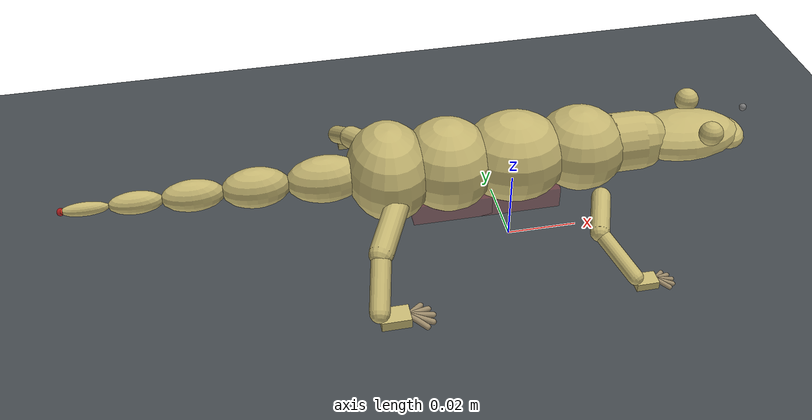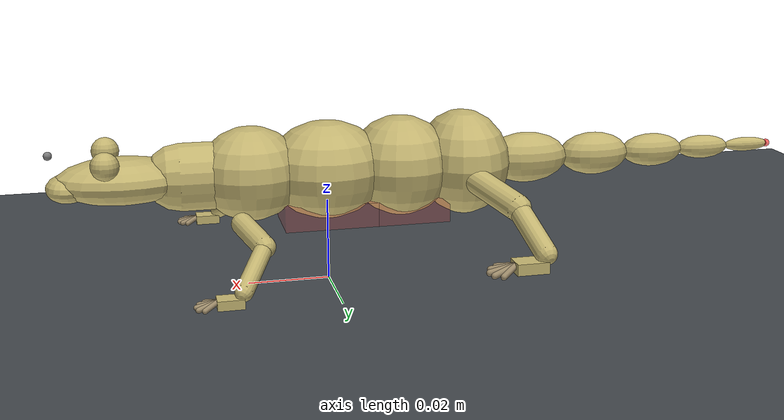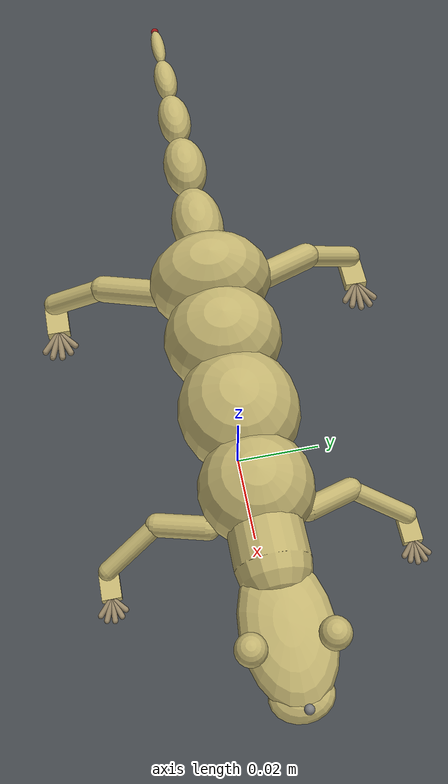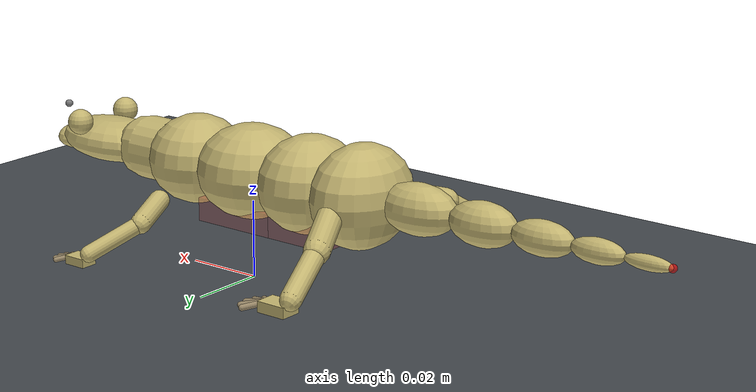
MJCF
<?xml version="1.0" encoding="utf-8"?>
<mujoco model="gecko_body_lab_candidate_v2">
  <compiler angle="degree" autolimits="true" inertiafromgeom="true" eulerseq="xyz" />
  <option timestep="0.0008" iterations="100" ls_iterations="50" integrator="implicitfast" cone="elliptic" jacobian="dense">
    <flag eulerdamp="disable" />
  </option>
  <statistic center="0 0 0.02" extent="0.28" meansize="0.01" />
  <visual>
    <global offwidth="640" offheight="480" azimuth="135" elevation="-20" />
    <quality shadowsize="2048" />
    <headlight diffuse="0.7 0.7 0.7" ambient="0.35 0.35 0.35" />
    <map force="0.01" />
  </visual>
  <default>
    <!-- joints: small armature+damping stabilise the light limbs [EST] -->
    <joint type="hinge" limited="true" armature="0.0012" damping="0.005" frictionloss="0.0002" />
    <default class="collision">
      <!-- contype=2,conaffinity=1 vs floor(1,1) => body-floor contacts only -->
      <geom group="3" contype="2" conaffinity="1" condim="3" friction="0.9 0.005 0.0001" solref="0.006 1" solimp="0.95 0.99 0.001" rgba="0.4 0.5 0.55 0.35" />
    </default>
    <default class="visual">
      <geom group="1" contype="0" conaffinity="0" mass="0" rgba="0.78 0.72 0.45 1" />
    </default>
    <default class="pos_small">
      <!-- head/neck/toes authority -->
      <position kp="0.049673202614379089" kv="0.0024836601307189543" forcerange="-0.24836601307189543 0.24836601307189543" />
    </default>
  </default>
  <asset>
    <texture type="skybox" builtin="gradient" rgb1="0.55 0.62 0.72" rgb2="0.18 0.22 0.30" width="256" height="256" />
    <texture name="grid" type="2d" builtin="checker" rgb1="0.22 0.24 0.26" rgb2="0.30 0.32 0.34" width="300" height="300" mark="edge" markrgb="0.5 0.5 0.5" />
    <material name="grid" texture="grid" texrepeat="6 6" texuniform="true" reflectance="0.05" />
    <material name="skin" rgba="0.83 0.73 0.42 1" />
    <!-- gecko base -->
    <material name="spot" rgba="0.45 0.36 0.22 1" />
    <material name="belly" rgba="0.93 0.90 0.80 1" />
    <material name="eye" rgba="0.05 0.05 0.06 1" />
  </asset>
  <worldbody>
    <light name="top" pos="0 0 0.6" dir="0 0 -1" directional="true" />
    <geom name="floor" type="plane" size="0 0 0.05" material="grid" contype="1" conaffinity="1" condim="3" friction="0.9 0.005 0.0001" />
    <body name="trunk_middle" pos="0 0 0.028">
      <!-- ROOT, ~CoM R-redist (root, ~CoM) -->
      <freejoint name="root" />
      <site name="imu" pos="0 0 0" size="0.002" />
      <site name="mid_back" pos="0 0 0.01196" size="0.0005" group="4" />
      <camera name="tracking" mode="trackcom" pos="0 -0.18 0.10" xyaxes="1 0 0 0 0.5 0.87" />
      <geom class="collision" type="capsule" fromto="-0.0095 0 0 0.0095 0 0" size="0.013" mass="0.0048938152568291223" />
      <!-- trunk_mid R-redist (root, ~CoM) -->
      <geom class="visual" type="ellipsoid" pos="0 0 0" size="0.0147 0.01365 0.01196" material="skin" />
      <site name="belly_mid" type="box" pos="0.0 0 -0.0104" size="0.0114 0.0078 0.003" rgba="0.9 0.2 0.2 0.25" />
      <body name="trunk_anterior" pos="0.0095 0 0">
        <site name="pectoral_center" pos="0.012500000000000001 0 -0.0094000000000000004" size="0.0005" group="4" />
        <joint name="spine_lat_1" axis="0 0 1" range="-25 25" stiffness="0.02" damping="0.006" />
        <!-- lateral bend 1 [R] -->
        <joint name="spine_pitch" axis="0 1 0" range="-10 10" stiffness="0.03" damping="0.006" />
        <!-- weakly actuated pitch [R] -->
        <geom class="collision" type="capsule" fromto="0 0 0 0.018 0 0" size="0.012" mass="0.0060074456059647178" />
        <!-- R-redist -->
        <geom class="visual" type="ellipsoid" pos="0.009 0 0" size="0.0126 0.0126 0.0114" material="skin" />
        <body name="neck" pos="0.018 0 0">
          <joint name="neck_yaw" axis="0 0 1" range="-40 40" />
          <joint name="neck_pitch" axis="0 1 0" range="-30 30" />
          <geom class="collision" type="capsule" fromto="0 0 0 0.008 0 0" size="0.008" mass="0.0017346030445535244" />
          <geom class="visual" type="capsule" fromto="0 0 0 0.008 0 0" size="0.00816" material="skin" />
          <body name="head" pos="0.008 0 0">
            <joint name="head_yaw" axis="0 0 1" range="-30 30" />
            <joint name="head_pitch" axis="0 1 0" range="-20 20" />
            <geom class="collision" type="ellipsoid" size="0.015949999999999999 0.0098049999999999995 0.0055649999999999996" mass="0.0052384572055326831" pos="0.01305 0 0" />
            <geom class="visual" type="ellipsoid" pos="0.01305 0 0" size="0.015949999999999999 0.0098049999999999995 0.0055649999999999996" material="skin" />
            <geom class="visual" type="ellipsoid" pos="0.02552 0 -0.0011" size="0.0052199999999999998 0.0066 0.0033275000000000002" material="skin" />
            <geom class="visual" type="sphere" pos="0.016820000000000002 0.0083000000000000001 0.0054999999999999997" size="0.0033" material="eye" />
            <!-- L eye -->
            <geom class="visual" type="sphere" pos="0.016820000000000002 -0.0083000000000000001 0.0054999999999999997" size="0.0033" material="eye" />
            <!-- R eye -->
            <camera name="head_cam" pos="0.02958 0 0.00682" xyaxes="0 -1 0 0 0 1" fovy="120" mode="fixed" />
            <site name="head_site" pos="0.02958 0 0.00682" size="0.001" />
            <site name="nose_tip" pos="0.029 0 0" size="0.001" rgba="1 0 0 0.6" />
          </body>
          <!-- head -->
        </body>
        <!-- neck -->
        <body name="humerus_L" pos="0.012500000000000001 0.010999999999999999 -0.0094000000000000004">
          <site name="shoulder_L" pos="0 0 0" size="0.0005" group="4" />
          <joint name="shoulder_sprawl_L" axis="1 0 0" range="-35 35" />
          <joint name="shoulder_proret_L" axis="0 0 1" range="-40 40" />
          <geom class="collision" type="capsule" fromto="0 0 0 -0.0038435905793392272 0.010890157112177317 -0.0027000000000000001" size="0.0025" mass="0.00091701651484774591" />
          <geom class="visual" type="capsule" fromto="0 0 0 -0.0038435905793392272 0.010890157112177317 -0.0027000000000000001" size="0.002625" material="skin" />
          <body name="forearm_L" pos="-0.0038435905793392272 0.010890157112177317 -0.0027000000000000001">
            <joint name="elbow_L" axis="0 1 0" range="-60 60" />
            <geom class="collision" type="capsule" fromto="0 0 0 0.0061395372186465519 0.012279038184394018 -0.0061000000000000004" size="0.002" mass="0.00061917185069551952" />
            <geom class="visual" type="capsule" fromto="0 0 0 0.0061395372186465519 0.012279038184394018 -0.0061000000000000004" size="0.0021" material="skin" />
            <body name="manus_L" pos="0.0061395372186465519 0.012279038184394018 -0.0061000000000000004">
              <joint name="wrist_L" axis="0 1 0" range="-35 35" stiffness="0.02" damping="0.003" />
              <!-- PASSIVE [R] -->
              <geom class="collision" type="box" pos="0.0030045264886472095 0 -0.0020557286501270379" size="0.0030045264886472095 0.0022138616232137334 0.0011069308116068667" mass="0.0001655721842865136" />
              <!-- forefoot pad (mass) -->
              <geom class="visual" type="box" pos="0.0030045264886472095 0 -0.0020557286501270379" size="0.0030045264886472095 0.0022138616232137334 0.0011069308116068667" material="skin" />
              <site name="footzone_fore_L" type="box" pos="0.0057323202743927021 0 -0.0019608488662750207" size="0.0066811181129128724 0.0049653753549222298 0.0029096467047951924" rgba="0.2 0.8 0.3 0.16" group="4" />
              <geom class="visual" type="capsule" fromto="0.0057086003284296978 0 -0.0016603962174102998 0.0084457239595873059 -0.0026432163650900735 -0.0024691910282081658" size="0.00063253189234678097" rgba="0.62 0.55 0.42 1" />
              <!-- digit 1 (visual) -->
              <geom class="collision" type="capsule" fromto="0.0084457239595873059 -0.0026432163650900735 -0.0024691910282081658 0.0091108312443899456 -0.0032854655286330319 -0.0028808269704501421" size="0.00031626594617339049" mass="0" rgba="0.15 0.13 0.10 1" />
              <!-- claw 1 (contact, massless) -->
              <geom class="visual" type="capsule" fromto="0.0057086003284296978 0 -0.0016603962174102998 0.0097098389464423465 -0.0016166171038112483 -0.0025776860610429472" size="0.00063253189234678097" rgba="0.62 0.55 0.42 1" />
              <!-- digit 2 (visual) -->
              <geom class="collision" type="capsule" fromto="0.0097098389464423465 -0.0016166171038112483 -0.0025776860610429472 0.010567077793545321 -0.0019629599414657285 -0.0029893220032849235" size="0.00031626594617339049" mass="0" rgba="0.15 0.13 0.10 1" />
              <!-- claw 2 (contact, massless) -->
              <geom class="visual" type="capsule" fromto="0.0057086003284296978 0 -0.0016603962174102998 0.010348933357172227 0 -0.0026467269170925983" size="0.00063253189234678097" rgba="0.62 0.55 0.42 1" />
              <!-- digit 3 (visual) -->
              <geom class="collision" type="capsule" fromto="0.010348933357172227 0 -0.0026467269170925983 0.011273457784323589 0 -0.0030583628593345747" size="0.00031626594617339049" mass="0" rgba="0.15 0.13 0.10 1" />
              <!-- claw 3 (contact, massless) -->
              <geom class="visual" type="capsule" fromto="0.0057086003284296978 0 -0.0016603962174102998 0.010011003193685957 0.0017382925199528059 -0.0026467269170925983" size="0.00063253189234678097" rgba="0.62 0.55 0.42 1" />
              <!-- digit 4 (visual) -->
              <geom class="collision" type="capsule" fromto="0.010011003193685957 0.0017382925199528059 -0.0026467269170925983 0.010868242040788933 0.0020846432642559402 -0.0030583628593345747" size="0.00031626594617339049" mass="0" rgba="0.15 0.13 0.10 1" />
              <!-- claw 4 (contact, massless) -->
              <geom class="visual" type="capsule" fromto="0.0057086003284296978 0 -0.0016603962174102998 0.0087128105511307327 0.0029010917109512022 -0.0025480914751297725" size="0.00063253189234678097" rgba="0.62 0.55 0.42 1" />
              <!-- digit 5 (visual) -->
              <geom class="collision" type="capsule" fromto="0.0087128105511307327 0.0029010917109512022 -0.0025480914751297725 0.0093778387694468304 0.0035433408744941605 -0.0029597353240204028" size="0.00031626594617339049" mass="0" rgba="0.15 0.13 0.10 1" />
              <!-- claw 5 (contact, massless) -->
            </body>
            <!-- manus -->
          </body>
          <!-- forearm -->
        </body>
        <!-- humerus -->
        <body name="humerus_R" pos="0.012500000000000001 -0.010999999999999999 -0.0094000000000000004">
          <site name="shoulder_R" pos="0 0 0" size="0.0005" group="4" />
          <joint name="shoulder_sprawl_R" axis="1 0 0" range="-35 35" />
          <joint name="shoulder_proret_R" axis="0 0 1" range="-40 40" />
          <geom class="collision" type="capsule" fromto="0 0 0 -0.0038435905793392272 -0.010890157112177317 -0.0027000000000000001" size="0.0025" mass="0.00091701651484774591" />
          <geom class="visual" type="capsule" fromto="0 0 0 -0.0038435905793392272 -0.010890157112177317 -0.0027000000000000001" size="0.002625" material="skin" />
          <body name="forearm_R" pos="-0.0038435905793392272 -0.010890157112177317 -0.0027000000000000001">
            <joint name="elbow_R" axis="0 1 0" range="-60 60" />
            <geom class="collision" type="capsule" fromto="0 0 0 0.0061395372186465519 -0.012279038184394018 -0.0061000000000000004" size="0.002" mass="0.00061917185069551952" />
            <geom class="visual" type="capsule" fromto="0 0 0 0.0061395372186465519 -0.012279038184394018 -0.0061000000000000004" size="0.0021" material="skin" />
            <body name="manus_R" pos="0.0061395372186465519 -0.012279038184394018 -0.0061000000000000004">
              <joint name="wrist_R" axis="0 1 0" range="-35 35" stiffness="0.02" damping="0.003" />
              <!-- PASSIVE [R] -->
              <geom class="collision" type="box" pos="0.0030045264886472095 0 -0.0020557286501270379" size="0.0030045264886472095 0.0022138616232137334 0.0011069308116068667" mass="0.0001655721842865136" />
              <!-- forefoot pad (mass) -->
              <geom class="visual" type="box" pos="0.0030045264886472095 0 -0.0020557286501270379" size="0.0030045264886472095 0.0022138616232137334 0.0011069308116068667" material="skin" />
              <site name="footzone_fore_R" type="box" pos="0.0057323202743927021 0 -0.0019608488662750207" size="0.0066811181129128724 0.0049653753549222298 0.0029096467047951924" rgba="0.2 0.8 0.3 0.16" group="4" />
              <geom class="visual" type="capsule" fromto="0.0057086003284296978 0 -0.0016603962174102998 0.0084457239595873059 0.0026432163650900735 -0.0024691910282081658" size="0.00063253189234678097" rgba="0.62 0.55 0.42 1" />
              <!-- digit 1 (visual) -->
              <geom class="collision" type="capsule" fromto="0.0084457239595873059 0.0026432163650900735 -0.0024691910282081658 0.0091108312443899456 0.0032854655286330319 -0.0028808269704501421" size="0.00031626594617339049" mass="0" rgba="0.15 0.13 0.10 1" />
              <!-- claw 1 (contact, massless) -->
              <geom class="visual" type="capsule" fromto="0.0057086003284296978 0 -0.0016603962174102998 0.0097098389464423465 0.0016166171038112483 -0.0025776860610429472" size="0.00063253189234678097" rgba="0.62 0.55 0.42 1" />
              <!-- digit 2 (visual) -->
              <geom class="collision" type="capsule" fromto="0.0097098389464423465 0.0016166171038112483 -0.0025776860610429472 0.010567077793545321 0.0019629599414657285 -0.0029893220032849235" size="0.00031626594617339049" mass="0" rgba="0.15 0.13 0.10 1" />
              <!-- claw 2 (contact, massless) -->
              <geom class="visual" type="capsule" fromto="0.0057086003284296978 0 -0.0016603962174102998 0.010348933357172227 0 -0.0026467269170925983" size="0.00063253189234678097" rgba="0.62 0.55 0.42 1" />
              <!-- digit 3 (visual) -->
              <geom class="collision" type="capsule" fromto="0.010348933357172227 0 -0.0026467269170925983 0.011273457784323589 0 -0.0030583628593345747" size="0.00031626594617339049" mass="0" rgba="0.15 0.13 0.10 1" />
              <!-- claw 3 (contact, massless) -->
              <geom class="visual" type="capsule" fromto="0.0057086003284296978 0 -0.0016603962174102998 0.010011003193685957 -0.0017382925199528059 -0.0026467269170925983" size="0.00063253189234678097" rgba="0.62 0.55 0.42 1" />
              <!-- digit 4 (visual) -->
              <geom class="collision" type="capsule" fromto="0.010011003193685957 -0.0017382925199528059 -0.0026467269170925983 0.010868242040788933 -0.0020846432642559402 -0.0030583628593345747" size="0.00031626594617339049" mass="0" rgba="0.15 0.13 0.10 1" />
              <!-- claw 4 (contact, massless) -->
              <geom class="visual" type="capsule" fromto="0.0057086003284296978 0 -0.0016603962174102998 0.0087128105511307327 -0.0029010917109512022 -0.0025480914751297725" size="0.00063253189234678097" rgba="0.62 0.55 0.42 1" />
              <!-- digit 5 (visual) -->
              <geom class="collision" type="capsule" fromto="0.0087128105511307327 -0.0029010917109512022 -0.0025480914751297725 0.0093778387694468304 -0.0035433408744941605 -0.0029597353240204028" size="0.00031626594617339049" mass="0" rgba="0.15 0.13 0.10 1" />
              <!-- claw 5 (contact, massless) -->
            </body>
            <!-- manus -->
          </body>
          <!-- forearm -->
        </body>
        <!-- humerus -->
      </body>
      <!-- trunk_anterior -->
      <body name="trunk_posterior" pos="-0.0095 0 0">
        <joint name="spine_lat_2" axis="0 0 1" range="-25 25" stiffness="0.02" damping="0.006" />
        <!-- lateral bend 2 [R] -->
        <geom class="collision" type="capsule" fromto="0 0 0 -0.018 0 0" size="0.013" mass="0.0039866241558965424" />
        <!-- R-redist -->
        <geom class="visual" type="ellipsoid" pos="-0.009 0 0" size="0.0129 0.01365 0.01235" material="skin" />
        <site name="belly_post" type="box" pos="-0.009 0 -0.0104" size="0.0108 0.0078 0.003" rgba="0.9 0.2 0.2 0.25" />
        <body name="pelvis" pos="-0.018 0 0">
          <site name="pelvis_center" pos="-0.007 0 -0.002" size="0.0005" group="4" />
          <joint name="spine_lat_3" axis="0 0 1" range="-25 25" stiffness="0.03" damping="0.007" />
          <!-- lateral bend 3 (lumbo-sacral) [R] -->
          <geom class="collision" type="capsule" fromto="0 0 0 -0.014 0 0" size="0.013" mass="0.0020867757186870369" />
          <geom class="visual" type="ellipsoid" pos="-0.007 0 0" size="0.01155 0.01456 0.013" material="skin" />
          <site name="vent" pos="-0.014 0 0" size="0.001" rgba="1 0 0 0.6" />
          <body name="femur_L" pos="-0.007 0.012 -0.002">
            <site name="hip_L" pos="0 0 0" size="0.0005" group="4" />
            <joint name="hip_sprawl_L" axis="1 0 0" range="-35 35" />
            <joint name="hip_proret_L" axis="0 0 1" range="-45 45" />
            <joint name="hip_rot_L" axis="0 1 0" range="-15 15" />
            <!-- long-axis -->
            <geom class="collision" type="capsule" fromto="0 0 0 -0.0066172123605431716 0.013234457808058039 -0.0040000000000000001" size="0.003" mass="0.00064372609363797504" />
            <geom class="visual" type="capsule" fromto="0 0 0 -0.0066172123605431716 0.013234457808058039 -0.0040000000000000001" size="0.00324" material="skin" />
            <body name="tibia_L" pos="-0.0066172123605431716 0.013234457808058039 -0.0040000000000000001">
              <joint name="knee_L" axis="0 1 0" range="-60 60" />
              <geom class="collision" type="capsule" fromto="0 0 0 -0.0027707696118629476 0.012666369743109798 -0.0076" size="0.0025" mass="0.0003437407428117574" />
              <geom class="visual" type="capsule" fromto="0 0 0 -0.0027707696118629476 0.012666369743109798 -0.0076" size="0.002625" material="skin" />
              <body name="pes_L" pos="-0.0027707696118629476 0.012666369743109798 -0.0076">
                <joint name="ankle_L" axis="0 1 0" range="-45 45" />
                <geom class="collision" type="box" pos="0.0037971374395781507 0 -0.0025314249597187676" size="0.0037971374395781507 0.002700186623700019 0.0013500933118500095" mass="0.00015691211998867716" />
                <!-- hindfoot pad (mass) -->
                <geom class="visual" type="box" pos="0.0037971374395781507 0 -0.0025314249597187676" size="0.0037971374395781507 0.002700186623700019 0.0013500933118500095" material="skin" />
                <site name="footzone_hind_L" type="box" pos="0.0073791037575802066 0 -0.0024386060445290795" size="0.0083916737414677142 0.0064551336472828567 0.0034511760284165862" rgba="0.2 0.8 0.3 0.16" group="4" />
                <geom class="visual" type="capsule" fromto="0.0072145611351984874 0 -0.0021095207997656397 0.010865972877928828 -0.0035260977691410626 -0.0031884647460969726" size="0.00075942748791563023" rgba="0.62 0.55 0.42 1" />
                <!-- digit 1 (visual) -->
                <geom class="collision" type="capsule" fromto="0.010865972877928828 -0.0035260977691410626 -0.0031884647460969726 0.011664468691056118 -0.0042971951261209966 -0.0036826832790660671" size="0.00037971374395781511" mass="0" rgba="0.15 0.13 0.10 1" />
                <!-- claw 1 (contact, massless) -->
                <geom class="visual" type="capsule" fromto="0.0072145611351984874 0 -0.0021095207997656397 0.01255232380526148 -0.0021565884278500107 -0.0033331947491272939" size="0.00075942748791563023" rgba="0.62 0.55 0.42 1" />
                <!-- digit 2 (visual) -->
                <geom class="collision" type="capsule" fromto="0.01255232380526148 -0.0021565884278500107 -0.0033331947491272939 0.013581516813051139 -0.0025724171678998134 -0.0038274132820963875" size="0.00037971374395781511" mass="0" rgba="0.15 0.13 0.10 1" />
                <!-- claw 2 (contact, massless) -->
                <geom class="visual" type="capsule" fromto="0.0072145611351984874 0 -0.0021095207997656397 0.013404823350862771 0 -0.0034253048653282605" size="0.00075942748791563023" rgba="0.62 0.55 0.42 1" />
                <!-- digit 3 (visual) -->
                <geom class="collision" type="capsule" fromto="0.013404823350862771 0 -0.0034253048653282605 0.014514853195699451 0 -0.0039195233982973546" size="0.00037971374395781511" mass="0" rgba="0.15 0.13 0.10 1" />
                <!-- claw 3 (contact, massless) -->
                <geom class="visual" type="capsule" fromto="0.0072145611351984874 0 -0.0021095207997656397 0.012954060946368849 0.0023189118343503769 -0.0034253048653282605" size="0.00075942748791563023" rgba="0.62 0.55 0.42 1" />
                <!-- digit 4 (visual) -->
                <geom class="collision" type="capsule" fromto="0.012954060946368849 0.0023189118343503769 -0.0034253048653282605 0.013983253954158508 0.0027347405744001796 -0.0039195233982973546" size="0.00037971374395781511" mass="0" rgba="0.15 0.13 0.10 1" />
                <!-- claw 4 (contact, massless) -->
                <geom class="visual" type="capsule" fromto="0.0072145611351984874 0 -0.0021095207997656397 0.011222144369761258 0.0038701099830836445 -0.0032937213959220789" size="0.00075942748791563023" rgba="0.62 0.55 0.42 1" />
                <!-- digit 5 (visual) -->
                <geom class="collision" type="capsule" fromto="0.011222144369761258 0.0038701099830836445 -0.0032937213959220789 0.012020640182888549 0.0046412073400635776 -0.0037879399288911733" size="0.00037971374395781511" mass="0" rgba="0.15 0.13 0.10 1" />
                <!-- claw 5 (contact, massless) -->
              </body>
              <!-- pes -->
            </body>
            <!-- tibia -->
          </body>
          <!-- femur -->
          <body name="femur_R" pos="-0.007 -0.012 -0.002">
            <site name="hip_R" pos="0 0 0" size="0.0005" group="4" />
            <joint name="hip_sprawl_R" axis="1 0 0" range="-35 35" />
            <joint name="hip_proret_R" axis="0 0 1" range="-45 45" />
            <joint name="hip_rot_R" axis="0 1 0" range="-15 15" />
            <!-- long-axis -->
            <geom class="collision" type="capsule" fromto="0 0 0 -0.0066172123605431716 -0.013234457808058039 -0.0040000000000000001" size="0.003" mass="0.00064372609363797504" />
            <geom class="visual" type="capsule" fromto="0 0 0 -0.0066172123605431716 -0.013234457808058039 -0.0040000000000000001" size="0.00324" material="skin" />
            <body name="tibia_R" pos="-0.0066172123605431716 -0.013234457808058039 -0.0040000000000000001">
              <joint name="knee_R" axis="0 1 0" range="-60 60" />
              <geom class="collision" type="capsule" fromto="0 0 0 -0.0027707696118629476 -0.012666369743109798 -0.0076" size="0.0025" mass="0.0003437407428117574" />
              <geom class="visual" type="capsule" fromto="0 0 0 -0.0027707696118629476 -0.012666369743109798 -0.0076" size="0.002625" material="skin" />
              <body name="pes_R" pos="-0.0027707696118629476 -0.012666369743109798 -0.0076">
                <joint name="ankle_R" axis="0 1 0" range="-45 45" />
                <geom class="collision" type="box" pos="0.0037971374395781507 0 -0.0025314249597187676" size="0.0037971374395781507 0.002700186623700019 0.0013500933118500095" mass="0.00015691211998867716" />
                <!-- hindfoot pad (mass) -->
                <geom class="visual" type="box" pos="0.0037971374395781507 0 -0.0025314249597187676" size="0.0037971374395781507 0.002700186623700019 0.0013500933118500095" material="skin" />
                <site name="footzone_hind_R" type="box" pos="0.0073791037575802066 0 -0.0024386060445290795" size="0.0083916737414677142 0.0064551336472828567 0.0034511760284165862" rgba="0.2 0.8 0.3 0.16" group="4" />
                <geom class="visual" type="capsule" fromto="0.0072145611351984874 0 -0.0021095207997656397 0.010865972877928828 0.0035260977691410626 -0.0031884647460969726" size="0.00075942748791563023" rgba="0.62 0.55 0.42 1" />
                <!-- digit 1 (visual) -->
                <geom class="collision" type="capsule" fromto="0.010865972877928828 0.0035260977691410626 -0.0031884647460969726 0.011664468691056118 0.0042971951261209966 -0.0036826832790660671" size="0.00037971374395781511" mass="0" rgba="0.15 0.13 0.10 1" />
                <!-- claw 1 (contact, massless) -->
                <geom class="visual" type="capsule" fromto="0.0072145611351984874 0 -0.0021095207997656397 0.01255232380526148 0.0021565884278500107 -0.0033331947491272939" size="0.00075942748791563023" rgba="0.62 0.55 0.42 1" />
                <!-- digit 2 (visual) -->
                <geom class="collision" type="capsule" fromto="0.01255232380526148 0.0021565884278500107 -0.0033331947491272939 0.013581516813051139 0.0025724171678998134 -0.0038274132820963875" size="0.00037971374395781511" mass="0" rgba="0.15 0.13 0.10 1" />
                <!-- claw 2 (contact, massless) -->
                <geom class="visual" type="capsule" fromto="0.0072145611351984874 0 -0.0021095207997656397 0.013404823350862771 0 -0.0034253048653282605" size="0.00075942748791563023" rgba="0.62 0.55 0.42 1" />
                <!-- digit 3 (visual) -->
                <geom class="collision" type="capsule" fromto="0.013404823350862771 0 -0.0034253048653282605 0.014514853195699451 0 -0.0039195233982973546" size="0.00037971374395781511" mass="0" rgba="0.15 0.13 0.10 1" />
                <!-- claw 3 (contact, massless) -->
                <geom class="visual" type="capsule" fromto="0.0072145611351984874 0 -0.0021095207997656397 0.012954060946368849 -0.0023189118343503769 -0.0034253048653282605" size="0.00075942748791563023" rgba="0.62 0.55 0.42 1" />
                <!-- digit 4 (visual) -->
                <geom class="collision" type="capsule" fromto="0.012954060946368849 -0.0023189118343503769 -0.0034253048653282605 0.013983253954158508 -0.0027347405744001796 -0.0039195233982973546" size="0.00037971374395781511" mass="0" rgba="0.15 0.13 0.10 1" />
                <!-- claw 4 (contact, massless) -->
                <geom class="visual" type="capsule" fromto="0.0072145611351984874 0 -0.0021095207997656397 0.011222144369761258 -0.0038701099830836445 -0.0032937213959220789" size="0.00075942748791563023" rgba="0.62 0.55 0.42 1" />
                <!-- digit 5 (visual) -->
                <geom class="collision" type="capsule" fromto="0.011222144369761258 -0.0038701099830836445 -0.0032937213959220789 0.012020640182888549 -0.0046412073400635776 -0.0037879399288911733" size="0.00037971374395781511" mass="0" rgba="0.15 0.13 0.10 1" />
                <!-- claw 5 (contact, massless) -->
              </body>
              <!-- pes -->
            </body>
            <!-- tibia -->
          </body>
          <!-- femur -->
          <body name="tail1" pos="-0.014 0 0">
            <joint name="tail_yaw_1" axis="0 0 1" range="-30 30" stiffness="0.02" damping="0.012" />
            <!-- high damping: no whip [R/EST] -->
            <joint name="tail_lift" axis="0 1 0" range="-25 25" stiffness="0.04" damping="0.012" />
            <!-- base lift/pitch [R] -->
            <geom class="collision" type="capsule" fromto="0 0 0 -0.019696727272727269 0 0" size="0.0055" mass="0.0042819129123997605" />
            <!-- tail1 heavy base R -->
            <geom class="visual" type="ellipsoid" pos="-0.0098483636363636343 0 0" size="0.010622163636363634 0.0063249999999999999 0.0063249999999999999" material="skin" />
            <body name="tail2" pos="-0.019696727272727269 0 0">
              <joint name="tail_yaw_2" axis="0 0 1" range="-30 30" stiffness="0.018" damping="0.010" />
              <geom class="collision" type="capsule" fromto="0 0 0 -0.016882909090909087 0 0" size="0.0045" mass="0.0024266195630414274" />
              <geom class="visual" type="ellipsoid" pos="-0.0084414545454545437 0 0" size="0.0090745636363636344 0.0054000000000000003 0.0054000000000000003" material="skin" />
              <body name="tail3" pos="-0.016882909090909087 0 0">
                <joint name="tail_yaw_3" axis="0 0 1" range="-30 30" stiffness="0.018" damping="0.010" />
                <geom class="collision" type="capsule" fromto="0 0 0 -0.015475999999999997 0 0" size="0.0035" mass="0.0012921665257550361" />
                <geom class="visual" type="ellipsoid" pos="-0.0077379999999999984 0 0" size="0.0082304181818181801 0.0041999999999999997 0.0041999999999999997" material="skin" />
                <body name="tail4" pos="-0.015475999999999997 0 0">
                  <joint name="tail_yaw_4" axis="0 0 1" range="-30 30" stiffness="0.018" damping="0.010" />
                  <geom class="collision" type="capsule" fromto="0 0 0 -0.013365636363636361 0 0" size="0.0025" mass="0.00030356766547044354" />
                  <geom class="visual" type="ellipsoid" pos="-0.0066828181818181804 0 0" size="0.007034545454545453 0.0030000000000000001 0.0030000000000000001" material="skin" />
                  <body name="tail5" pos="-0.013365636363636361 0 0">
                    <joint name="tail_yaw_5" axis="0 0 1" range="-30 30" stiffness="0.018" damping="0.010" />
                    <geom class="collision" type="capsule" fromto="0 0 0 -0.011958727272727272 0 0" size="0.0015" mass="5.5733333333333344e-05" />
                    <geom class="visual" type="ellipsoid" pos="-0.005979363636363636 0 0" size="0.0061903999999999995 0.0018 0.0018" material="skin" />
                    <site name="tail_tip" pos="-0.011958727272727272 0 0" size="0.001" rgba="1 0 0 0.6" />
                  </body>
                  <!-- tail5 -->
                </body>
                <!-- tail4 -->
              </body>
              <!-- tail3 -->
            </body>
            <!-- tail2 -->
          </body>
          <!-- tail1 -->
        </body>
        <!-- pelvis -->
      </body>
      <!-- trunk_posterior -->
    </body>
    <!-- trunk_middle (root) -->
  </worldbody>
  <tendon>
    <!-- spine: one fixed tendon couples the 3 lateral joints into a
         smooth lizard S-curve (single actuator). Spatial routing is a
         future muscle-level upgrade. [R] -->
    <fixed name="spine_bend" stiffness="0.01" damping="0.004">
      <joint joint="spine_lat_1" coef="1.0" />
      <joint joint="spine_lat_2" coef="1.0" />
      <joint joint="spine_lat_3" coef="0.8" />
    </fixed>
    <!-- tail: LEFT/RIGHT antagonist pair over the 5 yaw joints
         (muscle-like push-pull). Opposite-sign coefs; co-activation
         stiffens, differential bends. High joint damping prevents whip. -->
    <fixed name="tail_bend_L" stiffness="0.008" damping="0.005">
      <joint joint="tail_yaw_1" coef="1" />
      <joint joint="tail_yaw_2" coef="0.94" />
      <joint joint="tail_yaw_3" coef="0.88" />
      <joint joint="tail_yaw_4" coef="0.82" />
      <joint joint="tail_yaw_5" coef="0.76" />
    </fixed>
    <fixed name="tail_bend_R" stiffness="0.008" damping="0.005">
      <joint joint="tail_yaw_1" coef="-1" />
      <joint joint="tail_yaw_2" coef="-0.94" />
      <joint joint="tail_yaw_3" coef="-0.88" />
      <joint joint="tail_yaw_4" coef="-0.82" />
      <joint joint="tail_yaw_5" coef="-0.76" />
    </fixed>
  </tendon>
  <actuator>
    <!-- ===== HINDLIMB (10) ===== -->
    <position name="hip_sprawl_L" joint="hip_sprawl_L" kp="0.52777777777777779" kv="0.0086928104575163395" ctrlrange="-0.610865 0.610865" forcerange="-0.86928104575163401 0.86928104575163401" />
    <position name="hip_proret_L" joint="hip_proret_L" kp="0.52777777777777779" kv="0.0086928104575163395" ctrlrange="-0.78539816339744828 0.78539816339744828" forcerange="-0.86928104575163401 0.86928104575163401" />
    <position name="hip_rot_L" joint="hip_rot_L" kp="0.36944444444444446" kv="0.0086928104575163395" ctrlrange="-0.26179938779914941 0.26179938779914941" forcerange="-0.62091503267973858 0.62091503267973858" />
    <position name="knee_L" joint="knee_L" kp="0.46568627450980393" kv="0.0074509803921568628" ctrlrange="-1.0472 1.0472" forcerange="-0.86928104575163401 0.86928104575163401" />
    <position name="ankle_L" joint="ankle_L" kp="0.18627450980392157" kv="0.0031045751633986931" ctrlrange="-0.785398 0.785398" forcerange="-0.37254901960784315 0.37254901960784315" />
    <position name="hip_sprawl_R" joint="hip_sprawl_R" kp="0.52777777777777779" kv="0.0086928104575163395" ctrlrange="-0.610865 0.610865" forcerange="-0.86928104575163401 0.86928104575163401" />
    <position name="hip_proret_R" joint="hip_proret_R" kp="0.52777777777777779" kv="0.0086928104575163395" ctrlrange="-0.78539816339744828 0.78539816339744828" forcerange="-0.86928104575163401 0.86928104575163401" />
    <position name="hip_rot_R" joint="hip_rot_R" kp="0.36944444444444446" kv="0.0086928104575163395" ctrlrange="-0.26179938779914941 0.26179938779914941" forcerange="-0.62091503267973858 0.62091503267973858" />
    <position name="knee_R" joint="knee_R" kp="0.46568627450980393" kv="0.0074509803921568628" ctrlrange="-1.0472 1.0472" forcerange="-0.86928104575163401 0.86928104575163401" />
    <position name="ankle_R" joint="ankle_R" kp="0.18627450980392157" kv="0.0031045751633986931" ctrlrange="-0.785398 0.785398" forcerange="-0.37254901960784315 0.37254901960784315" />
    <!-- ===== FORELIMB (6); wrist is passive (no actuator) ===== -->
    <position name="shoulder_sprawl_L" joint="shoulder_sprawl_L" kp="0.37254901960784315" kv="0.0062091503267973861" ctrlrange="-0.610865 0.610865" forcerange="-0.68300653594771243 0.68300653594771243" />
    <position name="shoulder_proret_L" joint="shoulder_proret_L" kp="0.37254901960784315" kv="0.0062091503267973861" ctrlrange="-0.698132 0.698132" forcerange="-0.68300653594771243 0.68300653594771243" />
    <position name="elbow_L" joint="elbow_L" kp="0.31045751633986929" kv="0.0055882352941176465" ctrlrange="-1.0472 1.0472" forcerange="-0.68300653594771243 0.68300653594771243" />
    <position name="shoulder_sprawl_R" joint="shoulder_sprawl_R" kp="0.37254901960784315" kv="0.0062091503267973861" ctrlrange="-0.610865 0.610865" forcerange="-0.68300653594771243 0.68300653594771243" />
    <position name="shoulder_proret_R" joint="shoulder_proret_R" kp="0.37254901960784315" kv="0.0062091503267973861" ctrlrange="-0.698132 0.698132" forcerange="-0.68300653594771243 0.68300653594771243" />
    <position name="elbow_R" joint="elbow_R" kp="0.31045751633986929" kv="0.0055882352941176465" ctrlrange="-1.0472 1.0472" forcerange="-0.68300653594771243 0.68300653594771243" />
    <!-- ===== NECK/HEAD (4) ===== -->
    <position name="neck_yaw" joint="neck_yaw" class="pos_small" kp="0.062091503267973858" kv="0.0024836601307189543" ctrlrange="-0.698132 0.698132" />
    <position name="neck_pitch" joint="neck_pitch" class="pos_small" kp="0.062091503267973858" kv="0.0024836601307189543" ctrlrange="-0.523599 0.523599" />
    <position name="head_yaw" joint="head_yaw" class="pos_small" kp="0.037254901960784313" kv="0.0018627450980392157" ctrlrange="-0.523599 0.523599" />
    <position name="head_pitch" joint="head_pitch" class="pos_small" kp="0.037254901960784313" kv="0.0018627450980392157" ctrlrange="-0.349066 0.349066" />
    <!-- ===== AXIAL (5): spine bend tendon, spine pitch, tail L/R, tail lift ===== -->
    <position name="spine_bend" tendon="spine_bend" kp="0.18627450980392157" kv="0.0074509803921568628" ctrlrange="-1.2 1.2" forcerange="-0.55882352941176472 0.55882352941176472" />
    <position name="spine_pitch" joint="spine_pitch" kp="0.049673202614379089" kv="0.0024836601307189543" ctrlrange="-0.174533 0.174533" forcerange="-0.31045751633986929 0.31045751633986929" />
    <!-- weak posture ctrl -->
    <position name="tail_bend_L" tendon="tail_bend_L" kp="0.1366013071895425" kv="0.0074509803921568628" ctrlrange="-2.3 2.3" forcerange="-0.49673202614379086 0.49673202614379086" />
    <position name="tail_bend_R" tendon="tail_bend_R" kp="0.1366013071895425" kv="0.0074509803921568628" ctrlrange="-2.3 2.3" forcerange="-0.49673202614379086 0.49673202614379086" />
    <position name="tail_lift" joint="tail_lift" kp="0.093137254901960786" kv="0.0037254901960784314" ctrlrange="-0.436332 0.436332" forcerange="-0.37254901960784315 0.37254901960784315" />
  </actuator>
  <sensor>
    <!-- proprioception: all 32 hinge joints (pos + vel) -->
    <jointpos name="qp_spine_lat_1" joint="spine_lat_1" />
    <jointpos name="qp_spine_pitch" joint="spine_pitch" />
    <jointpos name="qp_spine_lat_2" joint="spine_lat_2" />
    <jointpos name="qp_spine_lat_3" joint="spine_lat_3" />
    <jointpos name="qp_neck_yaw" joint="neck_yaw" />
    <jointpos name="qp_neck_pitch" joint="neck_pitch" />
    <jointpos name="qp_head_yaw" joint="head_yaw" />
    <jointpos name="qp_head_pitch" joint="head_pitch" />
    <jointpos name="qp_tail_yaw_1" joint="tail_yaw_1" />
    <jointpos name="qp_tail_lift" joint="tail_lift" />
    <jointpos name="qp_tail_yaw_2" joint="tail_yaw_2" />
    <jointpos name="qp_tail_yaw_3" joint="tail_yaw_3" />
    <jointpos name="qp_tail_yaw_4" joint="tail_yaw_4" />
    <jointpos name="qp_tail_yaw_5" joint="tail_yaw_5" />
    <jointpos name="qp_shoulder_sprawl_L" joint="shoulder_sprawl_L" />
    <jointpos name="qp_shoulder_proret_L" joint="shoulder_proret_L" />
    <jointpos name="qp_elbow_L" joint="elbow_L" />
    <jointpos name="qp_wrist_L" joint="wrist_L" />
    <jointpos name="qp_hip_sprawl_L" joint="hip_sprawl_L" />
    <jointpos name="qp_hip_proret_L" joint="hip_proret_L" />
    <jointpos name="qp_hip_rot_L" joint="hip_rot_L" />
    <jointpos name="qp_knee_L" joint="knee_L" />
    <jointpos name="qp_ankle_L" joint="ankle_L" />
    <jointpos name="qp_shoulder_sprawl_R" joint="shoulder_sprawl_R" />
    <jointpos name="qp_shoulder_proret_R" joint="shoulder_proret_R" />
    <jointpos name="qp_elbow_R" joint="elbow_R" />
    <jointpos name="qp_wrist_R" joint="wrist_R" />
    <jointpos name="qp_hip_sprawl_R" joint="hip_sprawl_R" />
    <jointpos name="qp_hip_proret_R" joint="hip_proret_R" />
    <jointpos name="qp_hip_rot_R" joint="hip_rot_R" />
    <jointpos name="qp_knee_R" joint="knee_R" />
    <jointpos name="qp_ankle_R" joint="ankle_R" />
    <jointvel name="qv_spine_lat_1" joint="spine_lat_1" />
    <jointvel name="qv_spine_pitch" joint="spine_pitch" />
    <jointvel name="qv_spine_lat_2" joint="spine_lat_2" />
    <jointvel name="qv_spine_lat_3" joint="spine_lat_3" />
    <jointvel name="qv_neck_yaw" joint="neck_yaw" />
    <jointvel name="qv_neck_pitch" joint="neck_pitch" />
    <jointvel name="qv_head_yaw" joint="head_yaw" />
    <jointvel name="qv_head_pitch" joint="head_pitch" />
    <jointvel name="qv_tail_yaw_1" joint="tail_yaw_1" />
    <jointvel name="qv_tail_lift" joint="tail_lift" />
    <jointvel name="qv_tail_yaw_2" joint="tail_yaw_2" />
    <jointvel name="qv_tail_yaw_3" joint="tail_yaw_3" />
    <jointvel name="qv_tail_yaw_4" joint="tail_yaw_4" />
    <jointvel name="qv_tail_yaw_5" joint="tail_yaw_5" />
    <jointvel name="qv_shoulder_sprawl_L" joint="shoulder_sprawl_L" />
    <jointvel name="qv_shoulder_proret_L" joint="shoulder_proret_L" />
    <jointvel name="qv_elbow_L" joint="elbow_L" />
    <jointvel name="qv_wrist_L" joint="wrist_L" />
    <jointvel name="qv_hip_sprawl_L" joint="hip_sprawl_L" />
    <jointvel name="qv_hip_proret_L" joint="hip_proret_L" />
    <jointvel name="qv_hip_rot_L" joint="hip_rot_L" />
    <jointvel name="qv_knee_L" joint="knee_L" />
    <jointvel name="qv_ankle_L" joint="ankle_L" />
    <jointvel name="qv_shoulder_sprawl_R" joint="shoulder_sprawl_R" />
    <jointvel name="qv_shoulder_proret_R" joint="shoulder_proret_R" />
    <jointvel name="qv_elbow_R" joint="elbow_R" />
    <jointvel name="qv_wrist_R" joint="wrist_R" />
    <jointvel name="qv_hip_sprawl_R" joint="hip_sprawl_R" />
    <jointvel name="qv_hip_proret_R" joint="hip_proret_R" />
    <jointvel name="qv_hip_rot_R" joint="hip_rot_R" />
    <jointvel name="qv_knee_R" joint="knee_R" />
    <jointvel name="qv_ankle_R" joint="ankle_R" />
    <!-- tendon (spine + tail) length & velocity -->
    <tendonpos name="tp_spine_bend" tendon="spine_bend" />
    <tendonvel name="tv_spine_bend" tendon="spine_bend" />
    <tendonpos name="tp_tail_bend_L" tendon="tail_bend_L" />
    <tendonvel name="tv_tail_bend_L" tendon="tail_bend_L" />
    <tendonpos name="tp_tail_bend_R" tendon="tail_bend_R" />
    <tendonvel name="tv_tail_bend_R" tendon="tail_bend_R" />
    <!-- vestibular / upright: trunk IMU + gravity-axis in body frames -->
    <framezaxis name="up_trunk" objtype="site" objname="imu" />
    <framequat name="orient_trunk" objtype="site" objname="imu" />
    <gyro name="gyro_trunk" site="imu" />
    <accelerometer name="accel_trunk" site="imu" />
    <velocimeter name="vel_trunk" site="imu" />
    <framezaxis name="up_head" objtype="site" objname="head_site" />
    <framepos name="head_pos" objtype="site" objname="head_site" />
    <!-- contacts: 4 feet (summarised per foot) + 2 belly -->
    <touch name="touch_fore_L" site="footzone_fore_L" />
    <touch name="touch_fore_R" site="footzone_fore_R" />
    <touch name="touch_hind_L" site="footzone_hind_L" />
    <touch name="touch_hind_R" site="footzone_hind_R" />
    <touch name="touch_belly_mid" site="belly_mid" />
    <touch name="touch_belly_post" site="belly_post" />
  </sensor>
  <keyframe>
    <key name="neutral" qpos="0 0 0.028 1 0 0 0 0 0 0 0 0 0 0 0 0 0 0 0 0 0 0 0 0 0 0 0 0 0 0 0 0 0 0 0 0 0 0 0 " />
    <key name="stand" qpos="-0.0011201228053812004 5.0848617054877894e-19 0.019751829881838025 0.99959028665246052 6.3257143649368407e-19 -0.028622697812243438 -4.46779358178094e-19 -3.1477759126466902e-20 0.0030379672324282419 1.2722137901851446e-20 0.018816776995561085 7.8675244513144137e-21 0.014796683350197699 0.0056660291812772193 -2.075398784222762e-05 -0.0019721442460501684 -5.9260430209180338e-05 -0.0056660291812772184 2.0753987842227637e-05 -0.0019721442460501693 -5.9260430209180283e-05 3.9832349361313562e-20 2.1289358709364791e-20 0.0041516478436754174 -0.00022650498613274953 0.0019276142513703198 0.00021785435754386904 -4.2012636089255301e-05 -0.0041516478436754165 0.00022650498613274966 0.0019276142513703204 0.00021785435754386907 -4.2012636089255253e-05 1.1775937218007018e-20 -0.013821304559408868 2.0789716507121595e-21 -2.6693638507727487e-21 -4.2807237229215737e-21 -4.3421371318135379e-21" />
  </keyframe>
</mujoco>
